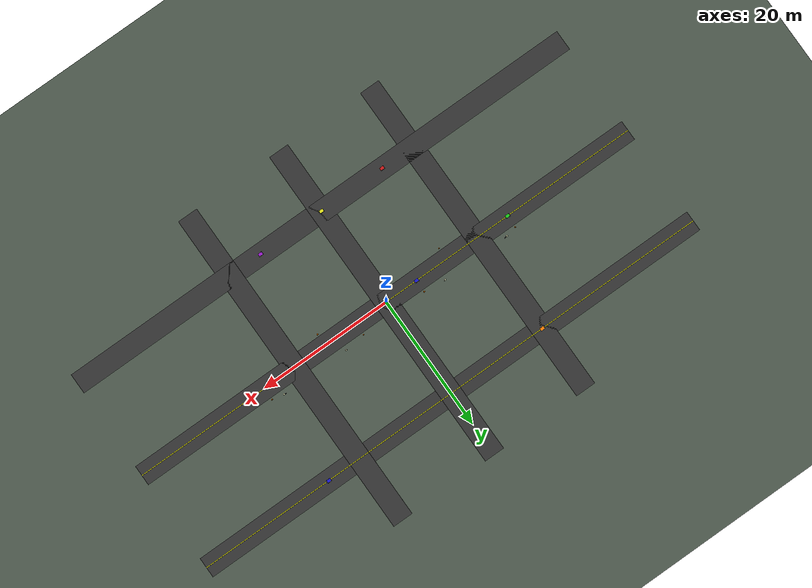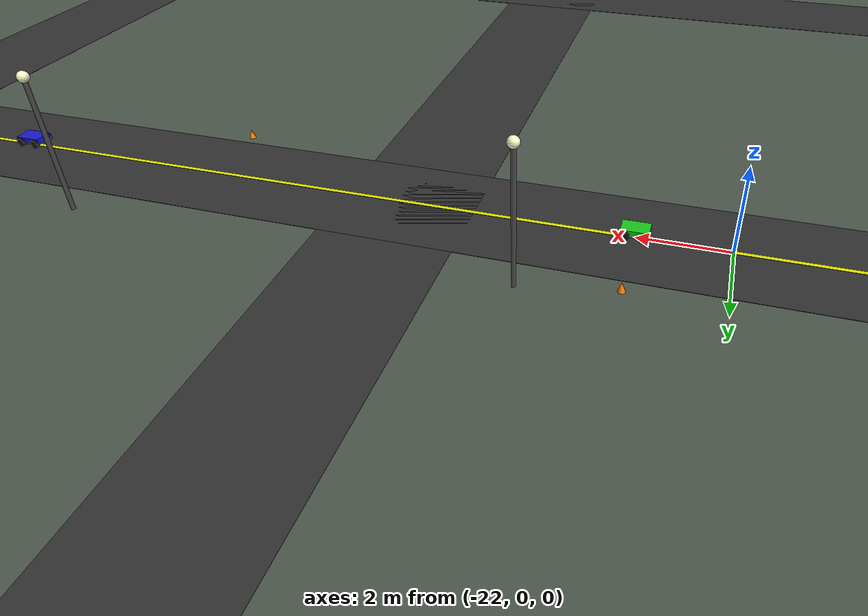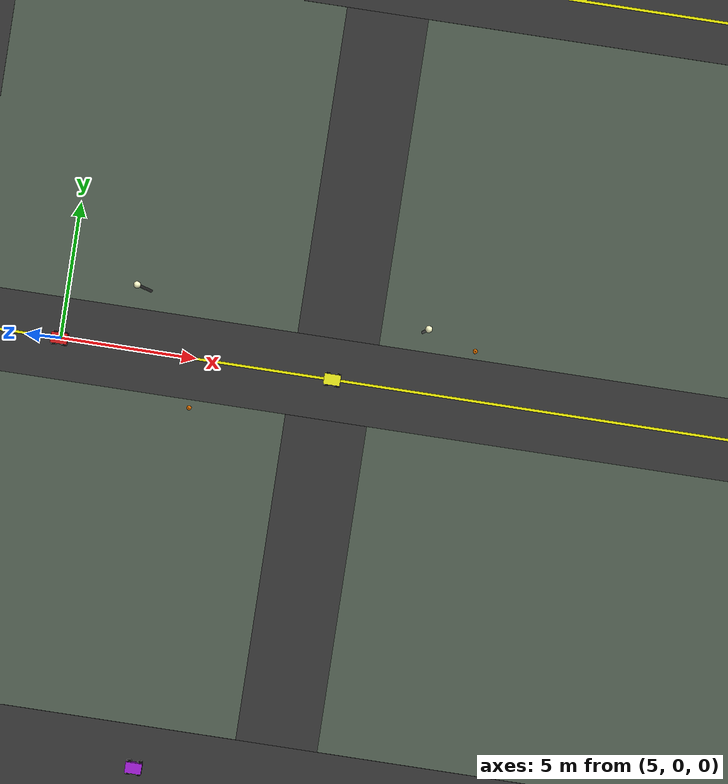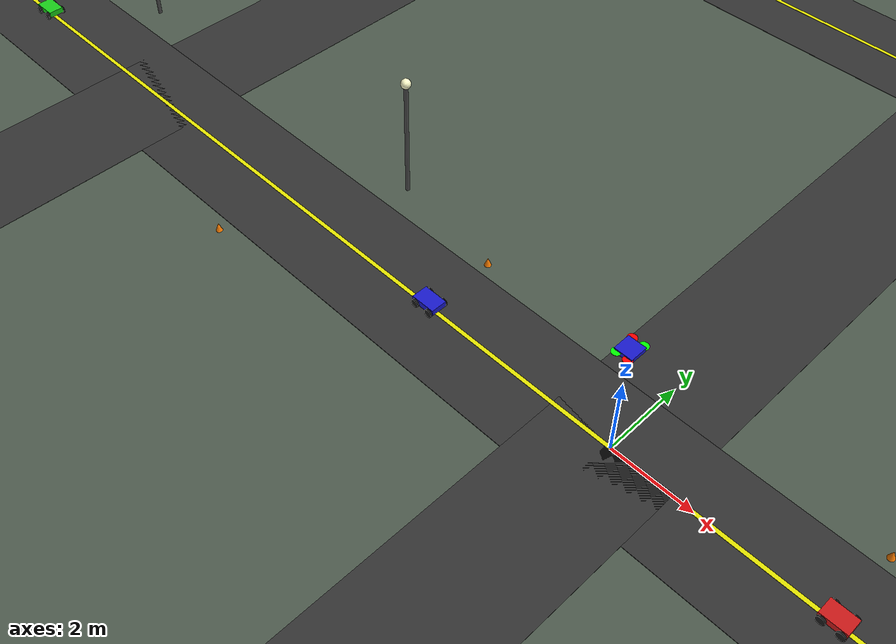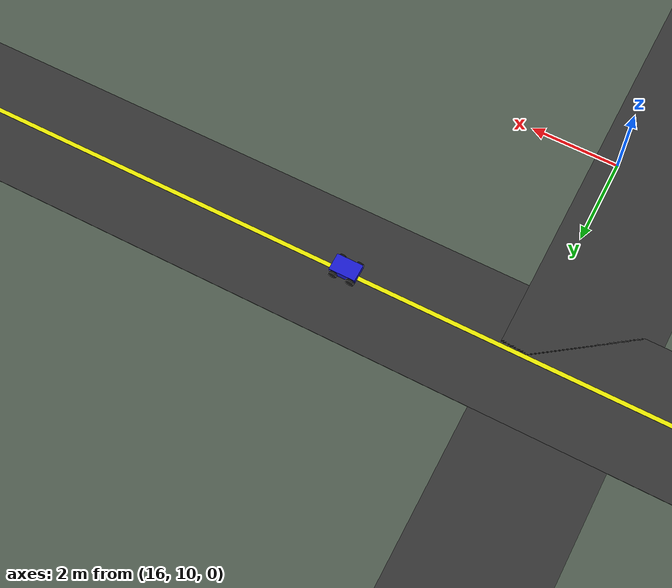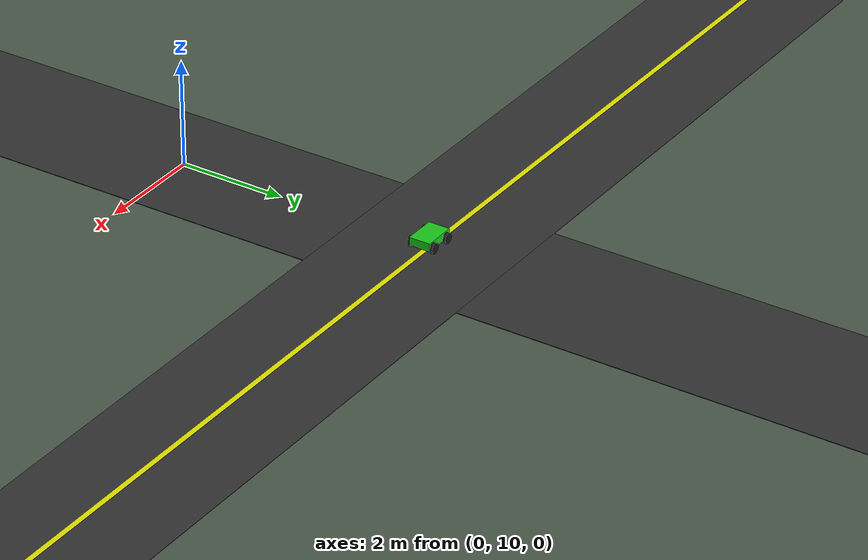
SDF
<?xml version="1.0" ?>
<sdf version="1.9">
  <world name="drone_tracker">

    <physics name="1ms" type="ignored">
      <max_step_size>0.001</max_step_size>
      <real_time_factor>1.0</real_time_factor>
    </physics>

    <plugin filename="gz-sim-physics-system" name="gz::sim::systems::Physics"/>
    <plugin filename="gz-sim-sensors-system" name="gz::sim::systems::Sensors">
      <render_engine>ogre</render_engine>
    </plugin>
    <plugin filename="gz-sim-scene-broadcaster-system" name="gz::sim::systems::SceneBroadcaster"/>
    <plugin filename="gz-sim-user-commands-system" name="gz::sim::systems::UserCommands"/>

    <light name="sun" type="directional">
      <cast_shadows>true</cast_shadows>
      <pose>0 0 10 0 0 0</pose>
      <diffuse>0.8 0.8 0.8 1</diffuse>
      <specular>0.2 0.2 0.2 1</specular>
      <direction>-0.5 0.1 -0.9</direction>
    </light>

    <light name="fill_light" type="directional">
      <cast_shadows>false</cast_shadows>
      <pose>0 0 10 0 0 0</pose>
      <diffuse>0.3 0.3 0.3 1</diffuse>
      <direction>0.5 -0.3 -0.7</direction>
    </light>

    <!-- Ground -->
    <model name="ground_plane">
      <static>true</static>
      <link name="link">
        <collision name="collision">
          <geometry><plane><normal>0 0 1</normal><size>200 200</size></plane></geometry>
        </collision>
        <visual name="visual">
          <geometry><plane><normal>0 0 1</normal><size>200 200</size></plane></geometry>
          <material><ambient>0.3 0.35 0.3 1</ambient><diffuse>0.3 0.35 0.3 1</diffuse></material>
        </visual>
      </link>
    </model>

    <!-- Roads -->
    <model name="road_h1"><static>true</static><link name="link"><visual name="v"><pose>0 0 0.005 0 0 0</pose><geometry><box><size>80 3 0.01</size></box></geometry><material><ambient>0.2 0.2 0.2 1</ambient><diffuse>0.2 0.2 0.2 1</diffuse></material></visual></link></model>
    <model name="road_line_h1"><static>true</static><link name="link"><visual name="v"><pose>0 0 0.01 0 0 0</pose><geometry><box><size>80 0.1 0.01</size></box></geometry><material><ambient>0.9 0.9 0.0 1</ambient><diffuse>0.9 0.9 0.0 1</diffuse></material></visual></link></model>
    <model name="road_h2"><static>true</static><link name="link"><visual name="v"><pose>0 15 0.005 0 0 0</pose><geometry><box><size>80 3 0.01</size></box></geometry><material><ambient>0.2 0.2 0.2 1</ambient><diffuse>0.2 0.2 0.2 1</diffuse></material></visual></link></model>
    <model name="road_line_h2"><static>true</static><link name="link"><visual name="v"><pose>0 15 0.01 0 0 0</pose><geometry><box><size>80 0.1 0.01</size></box></geometry><material><ambient>0.9 0.9 0.0 1</ambient><diffuse>0.9 0.9 0.0 1</diffuse></material></visual></link></model>
    <model name="road_h3"><static>true</static><link name="link"><visual name="v"><pose>0 -15 0.005 0 0 0</pose><geometry><box><size>80 3 0.01</size></box></geometry><material><ambient>0.2 0.2 0.2 1</ambient><diffuse>0.2 0.2 0.2 1</diffuse></material></visual></link></model>
    <model name="road_v1"><static>true</static><link name="link"><visual name="v"><pose>0 0 0.005 0 0 0</pose><geometry><box><size>3 50 0.01</size></box></geometry><material><ambient>0.2 0.2 0.2 1</ambient><diffuse>0.2 0.2 0.2 1</diffuse></material></visual></link></model>
    <model name="road_v2"><static>true</static><link name="link"><visual name="v"><pose>15 0 0.005 0 0 0</pose><geometry><box><size>3 50 0.01</size></box></geometry><material><ambient>0.2 0.2 0.2 1</ambient><diffuse>0.2 0.2 0.2 1</diffuse></material></visual></link></model>
    <model name="road_v3"><static>true</static><link name="link"><visual name="v"><pose>-15 0 0.005 0 0 0</pose><geometry><box><size>3 50 0.01</size></box></geometry><material><ambient>0.2 0.2 0.2 1</ambient><diffuse>0.2 0.2 0.2 1</diffuse></material></visual></link></model>

    <!-- Traffic Cones -->
    <model name="cone_1"><static>true</static><pose>5 1.8 0 0 0 0</pose><link name="link"><visual name="v"><geometry><cone><radius>0.15</radius><length>0.4</length></cone></geometry><material><ambient>1.0 0.5 0.0 1</ambient><diffuse>1.0 0.5 0.0 1</diffuse></material></visual></link></model>
    <model name="cone_2"><static>true</static><pose>-5 1.8 0 0 0 0</pose><link name="link"><visual name="v"><geometry><cone><radius>0.15</radius><length>0.4</length></cone></geometry><material><ambient>1.0 0.5 0.0 1</ambient><diffuse>1.0 0.5 0.0 1</diffuse></material></visual></link></model>
    <model name="cone_3"><static>true</static><pose>10 -1.8 0 0 0 0</pose><link name="link"><visual name="v"><geometry><cone><radius>0.15</radius><length>0.4</length></cone></geometry><material><ambient>1.0 0.5 0.0 1</ambient><diffuse>1.0 0.5 0.0 1</diffuse></material></visual></link></model>
    <model name="cone_4"><static>true</static><pose>-10 -1.8 0 0 0 0</pose><link name="link"><visual name="v"><geometry><cone><radius>0.15</radius><length>0.4</length></cone></geometry><material><ambient>1.0 0.5 0.0 1</ambient><diffuse>1.0 0.5 0.0 1</diffuse></material></visual></link></model>
    <model name="cone_5"><static>true</static><pose>20 1.8 0 0 0 0</pose><link name="link"><visual name="v"><geometry><cone><radius>0.15</radius><length>0.4</length></cone></geometry><material><ambient>1.0 0.5 0.0 1</ambient><diffuse>1.0 0.5 0.0 1</diffuse></material></visual></link></model>
    <model name="cone_6"><static>true</static><pose>-20 1.8 0 0 0 0</pose><link name="link"><visual name="v"><geometry><cone><radius>0.15</radius><length>0.4</length></cone></geometry><material><ambient>1.0 0.5 0.0 1</ambient><diffuse>1.0 0.5 0.0 1</diffuse></material></visual></link></model>

    <!-- Lamp Posts -->
    <model name="lamp_1"><static>true</static><pose>8 2.2 0 0 0 0</pose><link name="link"><visual name="pole"><pose>0 0 1.5 0 0 0</pose><geometry><cylinder><radius>0.05</radius><length>3.0</length></cylinder></geometry><material><ambient>0.3 0.3 0.3 1</ambient><diffuse>0.3 0.3 0.3 1</diffuse></material></visual><visual name="light"><pose>0 0 3.1 0 0 0</pose><geometry><sphere><radius>0.12</radius></sphere></geometry><material><ambient>1.0 1.0 0.8 1</ambient><diffuse>1.0 1.0 0.8 1</diffuse></material></visual></link></model>
    <model name="lamp_2"><static>true</static><pose>-8 2.2 0 0 0 0</pose><link name="link"><visual name="pole"><pose>0 0 1.5 0 0 0</pose><geometry><cylinder><radius>0.05</radius><length>3.0</length></cylinder></geometry><material><ambient>0.3 0.3 0.3 1</ambient><diffuse>0.3 0.3 0.3 1</diffuse></material></visual><visual name="light"><pose>0 0 3.1 0 0 0</pose><geometry><sphere><radius>0.12</radius></sphere></geometry><material><ambient>1.0 1.0 0.8 1</ambient><diffuse>1.0 1.0 0.8 1</diffuse></material></visual></link></model>
    <model name="lamp_3"><static>true</static><pose>18 2.2 0 0 0 0</pose><link name="link"><visual name="pole"><pose>0 0 1.5 0 0 0</pose><geometry><cylinder><radius>0.05</radius><length>3.0</length></cylinder></geometry><material><ambient>0.3 0.3 0.3 1</ambient><diffuse>0.3 0.3 0.3 1</diffuse></material></visual><visual name="light"><pose>0 0 3.1 0 0 0</pose><geometry><sphere><radius>0.12</radius></sphere></geometry><material><ambient>1.0 1.0 0.8 1</ambient><diffuse>1.0 1.0 0.8 1</diffuse></material></visual></link></model>
    <model name="lamp_4"><static>true</static><pose>-18 2.2 0 0 0 0</pose><link name="link"><visual name="pole"><pose>0 0 1.5 0 0 0</pose><geometry><cylinder><radius>0.05</radius><length>3.0</length></cylinder></geometry><material><ambient>0.3 0.3 0.3 1</ambient><diffuse>0.3 0.3 0.3 1</diffuse></material></visual><visual name="light"><pose>0 0 3.1 0 0 0</pose><geometry><sphere><radius>0.12</radius></sphere></geometry><material><ambient>1.0 1.0 0.8 1</ambient><diffuse>1.0 1.0 0.8 1</diffuse></material></visual></link></model>

    <!-- Drone -->
    <include><uri>model://quadrotor</uri><pose>0 0 3 0 0 0</pose></include>

    <!-- 10 Moving Vehicles -->
    <include><uri>model://ground_vehicle</uri><name>vehicle_1_red</name><pose>5 0 0.2 0 0 0</pose></include>
    <include><uri>model://ground_vehicle_blue</uri><name>vehicle_2_blue</name><pose>-5 0 0.2 0 0 0</pose></include>
    <include><uri>model://ground_vehicle_green</uri><name>vehicle_3_green</name><pose>0 15 0.2 0 0 0</pose></include>
    <include><uri>model://ground_vehicle_yellow</uri><name>vehicle_4_yellow</name><pose>15 0 0.2 0 0 0</pose></include>
    <include><uri>model://ground_vehicle_orange</uri><name>vehicle_5_orange</name><pose>-15 15 0.2 0 0 0</pose></include>
    <include><uri>model://ground_vehicle_purple</uri><name>vehicle_6_purple</name><pose>10 -15 0.2 0 0 0</pose></include>
    <include><uri>model://ground_vehicle</uri><name>vehicle_7_red</name><pose>-10 -15 0.2 0 0 0</pose></include>
    <include><uri>model://ground_vehicle_blue</uri><name>vehicle_8_blue</name><pose>20 15 0.2 0 0 0</pose></include>
    <include><uri>model://ground_vehicle_green</uri><name>vehicle_9_green</name><pose>-20 0 0.2 0 0 0</pose></include>
    <include><uri>model://ground_vehicle_yellow</uri><name>vehicle_10_yellow</name><pose>0 -15 0.2 0 0 0</pose></include>

  </world>
</sdf>

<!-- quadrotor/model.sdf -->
<sdf version="1.9">
  <model name="quadrotor">
    <self_collide>false</self_collide>

    <!-- ===== Main Body ===== -->
    <link name="base_link">
      <inertial>
        <mass>1.5</mass>
        <inertia>
          <ixx>0.029125</ixx><iyy>0.029125</iyy><izz>0.055225</izz>
          <ixy>0</ixy><ixz>0</ixz><iyz>0</iyz>
        </inertia>
      </inertial>
      <visual name="body_visual">
        <geometry><box><size>0.4 0.4 0.1</size></box></geometry>
        <material><ambient>0.1 0.1 0.8 1</ambient><diffuse>0.1 0.1 0.8 1</diffuse></material>
      </visual>
      <collision name="body_collision">
        <geometry><box><size>0.4 0.4 0.1</size></box></geometry>
      </collision>

      <!-- forward-facing camera -->
      <sensor name="camera" type="camera">
        <pose>0.06 0 0 0 0 0</pose>
        <camera>
          <horizontal_fov>1.4418</horizontal_fov>
          <image><width>1280</width><height>720</height><format>R8G8B8</format></image>
          <clip><near>0.1</near><far>100</far></clip>
        </camera>
        <always_on>1</always_on>
        <update_rate>30</update_rate>
        <visualize>true</visualize>
        <topic>/drone/camera</topic>
      </sensor>
    </link>

    <!-- ===== Rotor 0: Front-Left (CCW) ===== -->
    <link name="rotor_0">
      <pose>0.13 0.22 0.023 0 0 0</pose>
      <inertial>
        <mass>0.025</mass>
        <inertia><ixx>9.75e-7</ixx><iyy>4.17e-5</iyy><izz>4.26e-5</izz></inertia>
      </inertial>
      <visual name="rotor_0_visual">
        <geometry><cylinder><radius>0.1</radius><length>0.005</length></cylinder></geometry>
        <material><ambient>0 1 0 1</ambient><diffuse>0 1 0 1</diffuse></material>
      </visual>
      <collision name="rotor_0_collision">
        <geometry><cylinder><radius>0.1</radius><length>0.005</length></cylinder></geometry>
      </collision>
    </link>
    <joint name="rotor_0_joint" type="revolute">
      <parent>base_link</parent><child>rotor_0</child>
      <axis>
        <xyz>0 0 1</xyz>
        <limit><lower>-1e+16</lower><upper>1e+16</upper></limit>
        <dynamics><damping>0.004</damping></dynamics>
      </axis>
    </joint>

    <!-- ===== Rotor 1: Back-Right (CCW) ===== -->
    <link name="rotor_1">
      <pose>-0.13 -0.22 0.023 0 0 0</pose>
      <inertial>
        <mass>0.025</mass>
        <inertia><ixx>9.75e-7</ixx><iyy>4.17e-5</iyy><izz>4.26e-5</izz></inertia>
      </inertial>
      <visual name="rotor_1_visual">
        <geometry><cylinder><radius>0.1</radius><length>0.005</length></cylinder></geometry>
        <material><ambient>0 1 0 1</ambient><diffuse>0 1 0 1</diffuse></material>
      </visual>
      <collision name="rotor_1_collision">
        <geometry><cylinder><radius>0.1</radius><length>0.005</length></cylinder></geometry>
      </collision>
    </link>
    <joint name="rotor_1_joint" type="revolute">
      <parent>base_link</parent><child>rotor_1</child>
      <axis>
        <xyz>0 0 1</xyz>
        <limit><lower>-1e+16</lower><upper>1e+16</upper></limit>
        <dynamics><damping>0.004</damping></dynamics>
      </axis>
    </joint>

    <!-- ===== Rotor 2: Front-Right (CW) ===== -->
    <link name="rotor_2">
      <pose>0.13 -0.22 0.023 0 0 0</pose>
      <inertial>
        <mass>0.025</mass>
        <inertia><ixx>9.75e-7</ixx><iyy>4.17e-5</iyy><izz>4.26e-5</izz></inertia>
      </inertial>
      <visual name="rotor_2_visual">
        <geometry><cylinder><radius>0.1</radius><length>0.005</length></cylinder></geometry>
        <material><ambient>1 0 0 1</ambient><diffuse>1 0 0 1</diffuse></material>
      </visual>
      <collision name="rotor_2_collision">
        <geometry><cylinder><radius>0.1</radius><length>0.005</length></cylinder></geometry>
      </collision>
    </link>
    <joint name="rotor_2_joint" type="revolute">
      <parent>base_link</parent><child>rotor_2</child>
      <axis>
        <xyz>0 0 1</xyz>
        <limit><lower>-1e+16</lower><upper>1e+16</upper></limit>
        <dynamics><damping>0.004</damping></dynamics>
      </axis>
    </joint>

    <!-- ===== Rotor 3: Back-Left (CW) ===== -->
    <link name="rotor_3">
      <pose>-0.13 0.22 0.023 0 0 0</pose>
      <inertial>
        <mass>0.025</mass>
        <inertia><ixx>9.75e-7</ixx><iyy>4.17e-5</iyy><izz>4.26e-5</izz></inertia>
      </inertial>
      <visual name="rotor_3_visual">
        <geometry><cylinder><radius>0.1</radius><length>0.005</length></cylinder></geometry>
        <material><ambient>1 0 0 1</ambient><diffuse>1 0 0 1</diffuse></material>
      </visual>
      <collision name="rotor_3_collision">
        <geometry><cylinder><radius>0.1</radius><length>0.005</length></cylinder></geometry>
      </collision>
    </link>
    <joint name="rotor_3_joint" type="revolute">
      <parent>base_link</parent><child>rotor_3</child>
      <axis>
        <xyz>0 0 1</xyz>
        <limit><lower>-1e+16</lower><upper>1e+16</upper></limit>
        <dynamics><damping>0.004</damping></dynamics>
      </axis>
    </joint>

    <!-- ===== Motor Model Plugins (one per rotor) ===== -->
    <plugin filename="gz-sim-multicopter-motor-model-system"
            name="gz::sim::systems::MulticopterMotorModel">
      <robotNamespace>drone</robotNamespace>
      <jointName>rotor_0_joint</jointName>
      <linkName>rotor_0</linkName>
      <turningDirection>ccw</turningDirection>
      <timeConstantUp>0.0125</timeConstantUp>
      <timeConstantDown>0.025</timeConstantDown>
      <maxRotVelocity>800</maxRotVelocity>
      <motorConstant>8.54858e-06</motorConstant>
      <momentConstant>0.06</momentConstant>
      <commandSubTopic>command/motor_speed</commandSubTopic>
      <motorNumber>0</motorNumber>
      <rotorDragCoefficient>8.06428e-05</rotorDragCoefficient>
      <rollingMomentCoefficient>1e-06</rollingMomentCoefficient>
      <motorSpeedPubTopic>motor_speed/0</motorSpeedPubTopic>
      <rotorVelocitySlowdownSim>10</rotorVelocitySlowdownSim>
    </plugin>

    <plugin filename="gz-sim-multicopter-motor-model-system"
            name="gz::sim::systems::MulticopterMotorModel">
      <robotNamespace>drone</robotNamespace>
      <jointName>rotor_1_joint</jointName>
      <linkName>rotor_1</linkName>
      <turningDirection>ccw</turningDirection>
      <timeConstantUp>0.0125</timeConstantUp>
      <timeConstantDown>0.025</timeConstantDown>
      <maxRotVelocity>800</maxRotVelocity>
      <motorConstant>8.54858e-06</motorConstant>
      <momentConstant>0.06</momentConstant>
      <commandSubTopic>command/motor_speed</commandSubTopic>
      <motorNumber>1</motorNumber>
      <rotorDragCoefficient>8.06428e-05</rotorDragCoefficient>
      <rollingMomentCoefficient>1e-06</rollingMomentCoefficient>
      <motorSpeedPubTopic>motor_speed/1</motorSpeedPubTopic>
      <rotorVelocitySlowdownSim>10</rotorVelocitySlowdownSim>
    </plugin>

    <plugin filename="gz-sim-multicopter-motor-model-system"
            name="gz::sim::systems::MulticopterMotorModel">
      <robotNamespace>drone</robotNamespace>
      <jointName>rotor_2_joint</jointName>
      <linkName>rotor_2</linkName>
      <turningDirection>cw</turningDirection>
      <timeConstantUp>0.0125</timeConstantUp>
      <timeConstantDown>0.025</timeConstantDown>
      <maxRotVelocity>800</maxRotVelocity>
      <motorConstant>8.54858e-06</motorConstant>
      <momentConstant>0.06</momentConstant>
      <commandSubTopic>command/motor_speed</commandSubTopic>
      <motorNumber>2</motorNumber>
      <rotorDragCoefficient>8.06428e-05</rotorDragCoefficient>
      <rollingMomentCoefficient>1e-06</rollingMomentCoefficient>
      <motorSpeedPubTopic>motor_speed/2</motorSpeedPubTopic>
      <rotorVelocitySlowdownSim>10</rotorVelocitySlowdownSim>
    </plugin>

    <plugin filename="gz-sim-multicopter-motor-model-system"
            name="gz::sim::systems::MulticopterMotorModel">
      <robotNamespace>drone</robotNamespace>
      <jointName>rotor_3_joint</jointName>
      <linkName>rotor_3</linkName>
      <turningDirection>cw</turningDirection>
      <timeConstantUp>0.0125</timeConstantUp>
      <timeConstantDown>0.025</timeConstantDown>
      <maxRotVelocity>800</maxRotVelocity>
      <motorConstant>8.54858e-06</motorConstant>
      <momentConstant>0.06</momentConstant>
      <commandSubTopic>command/motor_speed</commandSubTopic>
      <motorNumber>3</motorNumber>
      <rotorDragCoefficient>8.06428e-05</rotorDragCoefficient>
      <rollingMomentCoefficient>1e-06</rollingMomentCoefficient>
      <motorSpeedPubTopic>motor_speed/3</motorSpeedPubTopic>
      <rotorVelocitySlowdownSim>10</rotorVelocitySlowdownSim>
    </plugin>

    <!-- ===== Velocity Controller (with full rotorConfiguration) ===== -->
    <plugin filename="gz-sim-multicopter-control-system"
            name="gz::sim::systems::MulticopterVelocityControl">
      <robotNamespace>drone</robotNamespace>
      <commandSubTopic>cmd_vel</commandSubTopic>
      <enableSubTopic>enable</enableSubTopic>
      <comLinkName>base_link</comLinkName>
      <velocityGain>2.7 2.7 2.7</velocityGain>
      <attitudeGain>2 3 0.15</attitudeGain>
      <angularRateGain>0.4 0.52 0.18</angularRateGain>
      <maximumLinearAcceleration>2 2 2</maximumLinearAcceleration>
      <rotorConfiguration>
        <rotor>
          <jointName>rotor_0_joint</jointName>
          <forceConstant>8.54858e-06</forceConstant>
          <momentConstant>0.06</momentConstant>
          <direction>1</direction>
        </rotor>
        <rotor>
          <jointName>rotor_1_joint</jointName>
          <forceConstant>8.54858e-06</forceConstant>
          <momentConstant>0.06</momentConstant>
          <direction>1</direction>
        </rotor>
        <rotor>
          <jointName>rotor_2_joint</jointName>
          <forceConstant>8.54858e-06</forceConstant>
          <momentConstant>0.06</momentConstant>
          <direction>-1</direction>
        </rotor>
        <rotor>
          <jointName>rotor_3_joint</jointName>
          <forceConstant>8.54858e-06</forceConstant>
          <momentConstant>0.06</momentConstant>
          <direction>-1</direction>
        </rotor>
      </rotorConfiguration>
    </plugin>

  </model>
</sdf>

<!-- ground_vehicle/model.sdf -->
<sdf version="1.9">
  <model name="ground_vehicle">

    <link name="chassis">
      <inertial>
        <mass>5.0</mass>
        <inertia><ixx>0.13</ixx><iyy>0.30</iyy><izz>0.43</izz></inertia>
      </inertial>
      <visual name="chassis_visual">
        <geometry><box><size>0.6 0.4 0.15</size></box></geometry>
        <material><ambient>0.8 0.1 0.1 1</ambient><diffuse>0.8 0.1 0.1 1</diffuse></material>
      </visual>
      <collision name="chassis_collision">
        <geometry><box><size>0.6 0.4 0.15</size></box></geometry>
      </collision>
    </link>

    <!-- Front Left Wheel -->
    <link name="front_left_wheel">
      <pose>0.2 0.22 -0.05 -1.5707 0 0</pose>
      <inertial><mass>0.5</mass><inertia><ixx>0.02</ixx><iyy>0.02</iyy><izz>0.04</izz></inertia></inertial>
      <visual name="visual"><geometry><cylinder><radius>0.1</radius><length>0.05</length></cylinder></geometry>
        <material><ambient>0.1 0.1 0.1 1</ambient></material></visual>
      <collision name="collision"><geometry><cylinder><radius>0.1</radius><length>0.05</length></cylinder></geometry></collision>
    </link>

    <!-- Front Right Wheel -->
    <link name="front_right_wheel">
      <pose>0.2 -0.22 -0.05 -1.5707 0 0</pose>
      <inertial><mass>0.5</mass><inertia><ixx>0.02</ixx><iyy>0.02</iyy><izz>0.04</izz></inertia></inertial>
      <visual name="visual"><geometry><cylinder><radius>0.1</radius><length>0.05</length></cylinder></geometry>
        <material><ambient>0.1 0.1 0.1 1</ambient></material></visual>
      <collision name="collision"><geometry><cylinder><radius>0.1</radius><length>0.05</length></cylinder></geometry></collision>
    </link>

    <!-- Rear Left Wheel -->
    <link name="rear_left_wheel">
      <pose>-0.2 0.22 -0.05 -1.5707 0 0</pose>
      <inertial><mass>0.5</mass><inertia><ixx>0.02</ixx><iyy>0.02</iyy><izz>0.04</izz></inertia></inertial>
      <visual name="visual"><geometry><cylinder><radius>0.1</radius><length>0.05</length></cylinder></geometry>
        <material><ambient>0.1 0.1 0.1 1</ambient></material></visual>
      <collision name="collision"><geometry><cylinder><radius>0.1</radius><length>0.05</length></cylinder></geometry></collision>
    </link>

    <!-- Rear Right Wheel -->
    <link name="rear_right_wheel">
      <pose>-0.2 -0.22 -0.05 -1.5707 0 0</pose>
      <inertial><mass>0.5</mass><inertia><ixx>0.02</ixx><iyy>0.02</iyy><izz>0.04</izz></inertia></inertial>
      <visual name="visual"><geometry><cylinder><radius>0.1</radius><length>0.05</length></cylinder></geometry>
        <material><ambient>0.1 0.1 0.1 1</ambient></material></visual>
      <collision name="collision"><geometry><cylinder><radius>0.1</radius><length>0.05</length></cylinder></geometry></collision>
    </link>

    <!-- Front Left Wheel Joint -->
    <joint name="front_left_wheel_joint" type="revolute">
      <parent>chassis</parent><child>front_left_wheel</child>
      <axis><xyz>0 0 1</xyz></axis>
    </joint>

    <!-- Front Right Wheel Joint -->
    <joint name="front_right_wheel_joint" type="revolute">
      <parent>chassis</parent><child>front_right_wheel</child>
      <axis><xyz>0 0 1</xyz></axis>
    </joint>

    <!-- Rear Left Wheel Joint -->
    <joint name="rear_left_wheel_joint" type="revolute">
      <parent>chassis</parent><child>rear_left_wheel</child>
      <axis><xyz>0 0 1</xyz></axis>
    </joint>

    <!-- Rear Right Wheel Joint -->
    <joint name="rear_right_wheel_joint" type="revolute">
      <parent>chassis</parent><child>rear_right_wheel</child>
      <axis><xyz>0 0 1</xyz></axis>
    </joint>

    <!-- Differential drive plugin - uses rear wheels for driving -->
    <plugin filename="gz-sim-diff-drive-system"
            name="gz::sim::systems::DiffDrive">
      <left_joint>rear_left_wheel_joint</left_joint>
      <right_joint>rear_right_wheel_joint</right_joint>
      <wheel_separation>0.44</wheel_separation>
      <wheel_radius>0.1</wheel_radius>
      <topic>/ground_vehicle/cmd_vel</topic>
      <odom_topic>/ground_vehicle/odom</odom_topic>
    </plugin>

  </model>
</sdf>

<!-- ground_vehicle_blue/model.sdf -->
<sdf version="1.9">
  <model name="ground_vehicle">

    <link name="chassis">
      <inertial>
        <mass>5.0</mass>
        <inertia><ixx>0.13</ixx><iyy>0.30</iyy><izz>0.43</izz></inertia>
      </inertial>
      <visual name="chassis_visual">
        <geometry><box><size>0.6 0.4 0.15</size></box></geometry>
        <material><ambient>0.1 0.1 0.8 1</ambient><diffuse>0.1 0.1 0.8 1</diffuse></material>
      </visual>
      <collision name="chassis_collision">
        <geometry><box><size>0.6 0.4 0.15</size></box></geometry>
      </collision>
    </link>

    <!-- Front Left Wheel -->
    <link name="front_left_wheel">
      <pose>0.2 0.22 -0.05 -1.5707 0 0</pose>
      <inertial><mass>0.5</mass><inertia><ixx>0.02</ixx><iyy>0.02</iyy><izz>0.04</izz></inertia></inertial>
      <visual name="visual"><geometry><cylinder><radius>0.1</radius><length>0.05</length></cylinder></geometry>
        <material><ambient>0.1 0.1 0.1 1</ambient></material></visual>
      <collision name="collision"><geometry><cylinder><radius>0.1</radius><length>0.05</length></cylinder></geometry></collision>
    </link>

    <!-- Front Right Wheel -->
    <link name="front_right_wheel">
      <pose>0.2 -0.22 -0.05 -1.5707 0 0</pose>
      <inertial><mass>0.5</mass><inertia><ixx>0.02</ixx><iyy>0.02</iyy><izz>0.04</izz></inertia></inertial>
      <visual name="visual"><geometry><cylinder><radius>0.1</radius><length>0.05</length></cylinder></geometry>
        <material><ambient>0.1 0.1 0.1 1</ambient></material></visual>
      <collision name="collision"><geometry><cylinder><radius>0.1</radius><length>0.05</length></cylinder></geometry></collision>
    </link>

    <!-- Rear Left Wheel -->
    <link name="rear_left_wheel">
      <pose>-0.2 0.22 -0.05 -1.5707 0 0</pose>
      <inertial><mass>0.5</mass><inertia><ixx>0.02</ixx><iyy>0.02</iyy><izz>0.04</izz></inertia></inertial>
      <visual name="visual"><geometry><cylinder><radius>0.1</radius><length>0.05</length></cylinder></geometry>
        <material><ambient>0.1 0.1 0.1 1</ambient></material></visual>
      <collision name="collision"><geometry><cylinder><radius>0.1</radius><length>0.05</length></cylinder></geometry></collision>
    </link>

    <!-- Rear Right Wheel -->
    <link name="rear_right_wheel">
      <pose>-0.2 -0.22 -0.05 -1.5707 0 0</pose>
      <inertial><mass>0.5</mass><inertia><ixx>0.02</ixx><iyy>0.02</iyy><izz>0.04</izz></inertia></inertial>
      <visual name="visual"><geometry><cylinder><radius>0.1</radius><length>0.05</length></cylinder></geometry>
        <material><ambient>0.1 0.1 0.1 1</ambient></material></visual>
      <collision name="collision"><geometry><cylinder><radius>0.1</radius><length>0.05</length></cylinder></geometry></collision>
    </link>

    <!-- Front Left Wheel Joint -->
    <joint name="front_left_wheel_joint" type="revolute">
      <parent>chassis</parent><child>front_left_wheel</child>
      <axis><xyz>0 0 1</xyz></axis>
    </joint>

    <!-- Front Right Wheel Joint -->
    <joint name="front_right_wheel_joint" type="revolute">
      <parent>chassis</parent><child>front_right_wheel</child>
      <axis><xyz>0 0 1</xyz></axis>
    </joint>

    <!-- Rear Left Wheel Joint -->
    <joint name="rear_left_wheel_joint" type="revolute">
      <parent>chassis</parent><child>rear_left_wheel</child>
      <axis><xyz>0 0 1</xyz></axis>
    </joint>

    <!-- Rear Right Wheel Joint -->
    <joint name="rear_right_wheel_joint" type="revolute">
      <parent>chassis</parent><child>rear_right_wheel</child>
      <axis><xyz>0 0 1</xyz></axis>
    </joint>

    <!-- Differential drive plugin - uses rear wheels for driving -->
    <plugin filename="gz-sim-diff-drive-system"
            name="gz::sim::systems::DiffDrive">
      <left_joint>rear_left_wheel_joint</left_joint>
      <right_joint>rear_right_wheel_joint</right_joint>
      <wheel_separation>0.44</wheel_separation>
      <wheel_radius>0.1</wheel_radius>
      <topic>/ground_vehicle_blue/cmd_vel</topic>
      <odom_topic>/ground_vehicle_blue/odom</odom_topic>
    </plugin>

  </model>
</sdf>

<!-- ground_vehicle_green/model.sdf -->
<sdf version="1.9">
  <model name="ground_vehicle">

    <link name="chassis">
      <inertial>
        <mass>5.0</mass>
        <inertia><ixx>0.13</ixx><iyy>0.30</iyy><izz>0.43</izz></inertia>
      </inertial>
      <visual name="chassis_visual">
        <geometry><box><size>0.6 0.4 0.15</size></box></geometry>
        <material><ambient>0.1 0.8 0.1 1</ambient><diffuse>0.1 0.8 0.1 1</diffuse></material>
      </visual>
      <collision name="chassis_collision">
        <geometry><box><size>0.6 0.4 0.15</size></box></geometry>
      </collision>
    </link>

    <!-- Front Left Wheel -->
    <link name="front_left_wheel">
      <pose>0.2 0.22 -0.05 -1.5707 0 0</pose>
      <inertial><mass>0.5</mass><inertia><ixx>0.02</ixx><iyy>0.02</iyy><izz>0.04</izz></inertia></inertial>
      <visual name="visual"><geometry><cylinder><radius>0.1</radius><length>0.05</length></cylinder></geometry>
        <material><ambient>0.1 0.1 0.1 1</ambient></material></visual>
      <collision name="collision"><geometry><cylinder><radius>0.1</radius><length>0.05</length></cylinder></geometry></collision>
    </link>

    <!-- Front Right Wheel -->
    <link name="front_right_wheel">
      <pose>0.2 -0.22 -0.05 -1.5707 0 0</pose>
      <inertial><mass>0.5</mass><inertia><ixx>0.02</ixx><iyy>0.02</iyy><izz>0.04</izz></inertia></inertial>
      <visual name="visual"><geometry><cylinder><radius>0.1</radius><length>0.05</length></cylinder></geometry>
        <material><ambient>0.1 0.1 0.1 1</ambient></material></visual>
      <collision name="collision"><geometry><cylinder><radius>0.1</radius><length>0.05</length></cylinder></geometry></collision>
    </link>

    <!-- Rear Left Wheel -->
    <link name="rear_left_wheel">
      <pose>-0.2 0.22 -0.05 -1.5707 0 0</pose>
      <inertial><mass>0.5</mass><inertia><ixx>0.02</ixx><iyy>0.02</iyy><izz>0.04</izz></inertia></inertial>
      <visual name="visual"><geometry><cylinder><radius>0.1</radius><length>0.05</length></cylinder></geometry>
        <material><ambient>0.1 0.1 0.1 1</ambient></material></visual>
      <collision name="collision"><geometry><cylinder><radius>0.1</radius><length>0.05</length></cylinder></geometry></collision>
    </link>

    <!-- Rear Right Wheel -->
    <link name="rear_right_wheel">
      <pose>-0.2 -0.22 -0.05 -1.5707 0 0</pose>
      <inertial><mass>0.5</mass><inertia><ixx>0.02</ixx><iyy>0.02</iyy><izz>0.04</izz></inertia></inertial>
      <visual name="visual"><geometry><cylinder><radius>0.1</radius><length>0.05</length></cylinder></geometry>
        <material><ambient>0.1 0.1 0.1 1</ambient></material></visual>
      <collision name="collision"><geometry><cylinder><radius>0.1</radius><length>0.05</length></cylinder></geometry></collision>
    </link>

    <!-- Front Left Wheel Joint -->
    <joint name="front_left_wheel_joint" type="revolute">
      <parent>chassis</parent><child>front_left_wheel</child>
      <axis><xyz>0 0 1</xyz></axis>
    </joint>

    <!-- Front Right Wheel Joint -->
    <joint name="front_right_wheel_joint" type="revolute">
      <parent>chassis</parent><child>front_right_wheel</child>
      <axis><xyz>0 0 1</xyz></axis>
    </joint>

    <!-- Rear Left Wheel Joint -->
    <joint name="rear_left_wheel_joint" type="revolute">
      <parent>chassis</parent><child>rear_left_wheel</child>
      <axis><xyz>0 0 1</xyz></axis>
    </joint>

    <!-- Rear Right Wheel Joint -->
    <joint name="rear_right_wheel_joint" type="revolute">
      <parent>chassis</parent><child>rear_right_wheel</child>
      <axis><xyz>0 0 1</xyz></axis>
    </joint>

    <!-- Differential drive plugin - uses rear wheels for driving -->
    <plugin filename="gz-sim-diff-drive-system"
            name="gz::sim::systems::DiffDrive">
      <left_joint>rear_left_wheel_joint</left_joint>
      <right_joint>rear_right_wheel_joint</right_joint>
      <wheel_separation>0.44</wheel_separation>
      <wheel_radius>0.1</wheel_radius>
      <topic>/ground_vehicle_green/cmd_vel</topic>
      <odom_topic>/ground_vehicle_green/odom</odom_topic>
    </plugin>

  </model>
</sdf>

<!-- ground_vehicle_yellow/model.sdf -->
<sdf version="1.9">
  <model name="ground_vehicle">

    <link name="chassis">
      <inertial>
        <mass>5.0</mass>
        <inertia><ixx>0.13</ixx><iyy>0.30</iyy><izz>0.43</izz></inertia>
      </inertial>
      <visual name="chassis_visual">
        <geometry><box><size>0.6 0.4 0.15</size></box></geometry>
        <material><ambient>0.9 0.9 0.1 1</ambient><diffuse>0.9 0.9 0.1 1</diffuse></material>
      </visual>
      <collision name="chassis_collision">
        <geometry><box><size>0.6 0.4 0.15</size></box></geometry>
      </collision>
    </link>

    <!-- Front Left Wheel -->
    <link name="front_left_wheel">
      <pose>0.2 0.22 -0.05 -1.5707 0 0</pose>
      <inertial><mass>0.5</mass><inertia><ixx>0.02</ixx><iyy>0.02</iyy><izz>0.04</izz></inertia></inertial>
      <visual name="visual"><geometry><cylinder><radius>0.1</radius><length>0.05</length></cylinder></geometry>
        <material><ambient>0.1 0.1 0.1 1</ambient></material></visual>
      <collision name="collision"><geometry><cylinder><radius>0.1</radius><length>0.05</length></cylinder></geometry></collision>
    </link>

    <!-- Front Right Wheel -->
    <link name="front_right_wheel">
      <pose>0.2 -0.22 -0.05 -1.5707 0 0</pose>
      <inertial><mass>0.5</mass><inertia><ixx>0.02</ixx><iyy>0.02</iyy><izz>0.04</izz></inertia></inertial>
      <visual name="visual"><geometry><cylinder><radius>0.1</radius><length>0.05</length></cylinder></geometry>
        <material><ambient>0.1 0.1 0.1 1</ambient></material></visual>
      <collision name="collision"><geometry><cylinder><radius>0.1</radius><length>0.05</length></cylinder></geometry></collision>
    </link>

    <!-- Rear Left Wheel -->
    <link name="rear_left_wheel">
      <pose>-0.2 0.22 -0.05 -1.5707 0 0</pose>
      <inertial><mass>0.5</mass><inertia><ixx>0.02</ixx><iyy>0.02</iyy><izz>0.04</izz></inertia></inertial>
      <visual name="visual"><geometry><cylinder><radius>0.1</radius><length>0.05</length></cylinder></geometry>
        <material><ambient>0.1 0.1 0.1 1</ambient></material></visual>
      <collision name="collision"><geometry><cylinder><radius>0.1</radius><length>0.05</length></cylinder></geometry></collision>
    </link>

    <!-- Rear Right Wheel -->
    <link name="rear_right_wheel">
      <pose>-0.2 -0.22 -0.05 -1.5707 0 0</pose>
      <inertial><mass>0.5</mass><inertia><ixx>0.02</ixx><iyy>0.02</iyy><izz>0.04</izz></inertia></inertial>
      <visual name="visual"><geometry><cylinder><radius>0.1</radius><length>0.05</length></cylinder></geometry>
        <material><ambient>0.1 0.1 0.1 1</ambient></material></visual>
      <collision name="collision"><geometry><cylinder><radius>0.1</radius><length>0.05</length></cylinder></geometry></collision>
    </link>

    <!-- Front Left Wheel Joint -->
    <joint name="front_left_wheel_joint" type="revolute">
      <parent>chassis</parent><child>front_left_wheel</child>
      <axis><xyz>0 0 1</xyz></axis>
    </joint>

    <!-- Front Right Wheel Joint -->
    <joint name="front_right_wheel_joint" type="revolute">
      <parent>chassis</parent><child>front_right_wheel</child>
      <axis><xyz>0 0 1</xyz></axis>
    </joint>

    <!-- Rear Left Wheel Joint -->
    <joint name="rear_left_wheel_joint" type="revolute">
      <parent>chassis</parent><child>rear_left_wheel</child>
      <axis><xyz>0 0 1</xyz></axis>
    </joint>

    <!-- Rear Right Wheel Joint -->
    <joint name="rear_right_wheel_joint" type="revolute">
      <parent>chassis</parent><child>rear_right_wheel</child>
      <axis><xyz>0 0 1</xyz></axis>
    </joint>

    <!-- Differential drive plugin - uses rear wheels for driving -->
    <plugin filename="gz-sim-diff-drive-system"
            name="gz::sim::systems::DiffDrive">
      <left_joint>rear_left_wheel_joint</left_joint>
      <right_joint>rear_right_wheel_joint</right_joint>
      <wheel_separation>0.44</wheel_separation>
      <wheel_radius>0.1</wheel_radius>
      <topic>/ground_vehicle_yellow/cmd_vel</topic>
      <odom_topic>/ground_vehicle_yellow/odom</odom_topic>
    </plugin>

  </model>
</sdf>

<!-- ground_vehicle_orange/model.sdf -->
<sdf version="1.9">
  <model name="ground_vehicle">

    <link name="chassis">
      <inertial>
        <mass>5.0</mass>
        <inertia><ixx>0.13</ixx><iyy>0.30</iyy><izz>0.43</izz></inertia>
      </inertial>
      <visual name="chassis_visual">
        <geometry><box><size>0.6 0.4 0.15</size></box></geometry>
        <material><ambient>1.0 0.5 0.0 1</ambient><diffuse>1.0 0.5 0.0 1</diffuse></material>
      </visual>
      <collision name="chassis_collision">
        <geometry><box><size>0.6 0.4 0.15</size></box></geometry>
      </collision>
    </link>

    <!-- Front Left Wheel -->
    <link name="front_left_wheel">
      <pose>0.2 0.22 -0.05 -1.5707 0 0</pose>
      <inertial><mass>0.5</mass><inertia><ixx>0.02</ixx><iyy>0.02</iyy><izz>0.04</izz></inertia></inertial>
      <visual name="visual"><geometry><cylinder><radius>0.1</radius><length>0.05</length></cylinder></geometry>
        <material><ambient>0.1 0.1 0.1 1</ambient></material></visual>
      <collision name="collision"><geometry><cylinder><radius>0.1</radius><length>0.05</length></cylinder></geometry></collision>
    </link>

    <!-- Front Right Wheel -->
    <link name="front_right_wheel">
      <pose>0.2 -0.22 -0.05 -1.5707 0 0</pose>
      <inertial><mass>0.5</mass><inertia><ixx>0.02</ixx><iyy>0.02</iyy><izz>0.04</izz></inertia></inertial>
      <visual name="visual"><geometry><cylinder><radius>0.1</radius><length>0.05</length></cylinder></geometry>
        <material><ambient>0.1 0.1 0.1 1</ambient></material></visual>
      <collision name="collision"><geometry><cylinder><radius>0.1</radius><length>0.05</length></cylinder></geometry></collision>
    </link>

    <!-- Rear Left Wheel -->
    <link name="rear_left_wheel">
      <pose>-0.2 0.22 -0.05 -1.5707 0 0</pose>
      <inertial><mass>0.5</mass><inertia><ixx>0.02</ixx><iyy>0.02</iyy><izz>0.04</izz></inertia></inertial>
      <visual name="visual"><geometry><cylinder><radius>0.1</radius><length>0.05</length></cylinder></geometry>
        <material><ambient>0.1 0.1 0.1 1</ambient></material></visual>
      <collision name="collision"><geometry><cylinder><radius>0.1</radius><length>0.05</length></cylinder></geometry></collision>
    </link>

    <!-- Rear Right Wheel -->
    <link name="rear_right_wheel">
      <pose>-0.2 -0.22 -0.05 -1.5707 0 0</pose>
      <inertial><mass>0.5</mass><inertia><ixx>0.02</ixx><iyy>0.02</iyy><izz>0.04</izz></inertia></inertial>
      <visual name="visual"><geometry><cylinder><radius>0.1</radius><length>0.05</length></cylinder></geometry>
        <material><ambient>0.1 0.1 0.1 1</ambient></material></visual>
      <collision name="collision"><geometry><cylinder><radius>0.1</radius><length>0.05</length></cylinder></geometry></collision>
    </link>

    <!-- Front Left Wheel Joint -->
    <joint name="front_left_wheel_joint" type="revolute">
      <parent>chassis</parent><child>front_left_wheel</child>
      <axis><xyz>0 0 1</xyz></axis>
    </joint>

    <!-- Front Right Wheel Joint -->
    <joint name="front_right_wheel_joint" type="revolute">
      <parent>chassis</parent><child>front_right_wheel</child>
      <axis><xyz>0 0 1</xyz></axis>
    </joint>

    <!-- Rear Left Wheel Joint -->
    <joint name="rear_left_wheel_joint" type="revolute">
      <parent>chassis</parent><child>rear_left_wheel</child>
      <axis><xyz>0 0 1</xyz></axis>
    </joint>

    <!-- Rear Right Wheel Joint -->
    <joint name="rear_right_wheel_joint" type="revolute">
      <parent>chassis</parent><child>rear_right_wheel</child>
      <axis><xyz>0 0 1</xyz></axis>
    </joint>

    <!-- Differential drive plugin - uses rear wheels for driving -->
    <plugin filename="gz-sim-diff-drive-system"
            name="gz::sim::systems::DiffDrive">
      <left_joint>rear_left_wheel_joint</left_joint>
      <right_joint>rear_right_wheel_joint</right_joint>
      <wheel_separation>0.44</wheel_separation>
      <wheel_radius>0.1</wheel_radius>
      <topic>/ground_vehicle_orange/cmd_vel</topic>
      <odom_topic>/ground_vehicle_orange/odom</odom_topic>
    </plugin>

  </model>
</sdf>

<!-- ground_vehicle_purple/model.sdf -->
<sdf version="1.9">
  <model name="ground_vehicle">

    <link name="chassis">
      <inertial>
        <mass>5.0</mass>
        <inertia><ixx>0.13</ixx><iyy>0.30</iyy><izz>0.43</izz></inertia>
      </inertial>
      <visual name="chassis_visual">
        <geometry><box><size>0.6 0.4 0.15</size></box></geometry>
        <material><ambient>0.6 0.1 0.8 1</ambient><diffuse>0.6 0.1 0.8 1</diffuse></material>
      </visual>
      <collision name="chassis_collision">
        <geometry><box><size>0.6 0.4 0.15</size></box></geometry>
      </collision>
    </link>

    <!-- Front Left Wheel -->
    <link name="front_left_wheel">
      <pose>0.2 0.22 -0.05 -1.5707 0 0</pose>
      <inertial><mass>0.5</mass><inertia><ixx>0.02</ixx><iyy>0.02</iyy><izz>0.04</izz></inertia></inertial>
      <visual name="visual"><geometry><cylinder><radius>0.1</radius><length>0.05</length></cylinder></geometry>
        <material><ambient>0.1 0.1 0.1 1</ambient></material></visual>
      <collision name="collision"><geometry><cylinder><radius>0.1</radius><length>0.05</length></cylinder></geometry></collision>
    </link>

    <!-- Front Right Wheel -->
    <link name="front_right_wheel">
      <pose>0.2 -0.22 -0.05 -1.5707 0 0</pose>
      <inertial><mass>0.5</mass><inertia><ixx>0.02</ixx><iyy>0.02</iyy><izz>0.04</izz></inertia></inertial>
      <visual name="visual"><geometry><cylinder><radius>0.1</radius><length>0.05</length></cylinder></geometry>
        <material><ambient>0.1 0.1 0.1 1</ambient></material></visual>
      <collision name="collision"><geometry><cylinder><radius>0.1</radius><length>0.05</length></cylinder></geometry></collision>
    </link>

    <!-- Rear Left Wheel -->
    <link name="rear_left_wheel">
      <pose>-0.2 0.22 -0.05 -1.5707 0 0</pose>
      <inertial><mass>0.5</mass><inertia><ixx>0.02</ixx><iyy>0.02</iyy><izz>0.04</izz></inertia></inertial>
      <visual name="visual"><geometry><cylinder><radius>0.1</radius><length>0.05</length></cylinder></geometry>
        <material><ambient>0.1 0.1 0.1 1</ambient></material></visual>
      <collision name="collision"><geometry><cylinder><radius>0.1</radius><length>0.05</length></cylinder></geometry></collision>
    </link>

    <!-- Rear Right Wheel -->
    <link name="rear_right_wheel">
      <pose>-0.2 -0.22 -0.05 -1.5707 0 0</pose>
      <inertial><mass>0.5</mass><inertia><ixx>0.02</ixx><iyy>0.02</iyy><izz>0.04</izz></inertia></inertial>
      <visual name="visual"><geometry><cylinder><radius>0.1</radius><length>0.05</length></cylinder></geometry>
        <material><ambient>0.1 0.1 0.1 1</ambient></material></visual>
      <collision name="collision"><geometry><cylinder><radius>0.1</radius><length>0.05</length></cylinder></geometry></collision>
    </link>

    <!-- Front Left Wheel Joint -->
    <joint name="front_left_wheel_joint" type="revolute">
      <parent>chassis</parent><child>front_left_wheel</child>
      <axis><xyz>0 0 1</xyz></axis>
    </joint>

    <!-- Front Right Wheel Joint -->
    <joint name="front_right_wheel_joint" type="revolute">
      <parent>chassis</parent><child>front_right_wheel</child>
      <axis><xyz>0 0 1</xyz></axis>
    </joint>

    <!-- Rear Left Wheel Joint -->
    <joint name="rear_left_wheel_joint" type="revolute">
      <parent>chassis</parent><child>rear_left_wheel</child>
      <axis><xyz>0 0 1</xyz></axis>
    </joint>

    <!-- Rear Right Wheel Joint -->
    <joint name="rear_right_wheel_joint" type="revolute">
      <parent>chassis</parent><child>rear_right_wheel</child>
      <axis><xyz>0 0 1</xyz></axis>
    </joint>

    <!-- Differential drive plugin - uses rear wheels for driving -->
    <plugin filename="gz-sim-diff-drive-system"
            name="gz::sim::systems::DiffDrive">
      <left_joint>rear_left_wheel_joint</left_joint>
      <right_joint>rear_right_wheel_joint</right_joint>
      <wheel_separation>0.44</wheel_separation>
      <wheel_radius>0.1</wheel_radius>
      <topic>/ground_vehicle_purple/cmd_vel</topic>
      <odom_topic>/ground_vehicle_purple/odom</odom_topic>
    </plugin>

  </model>
</sdf>
